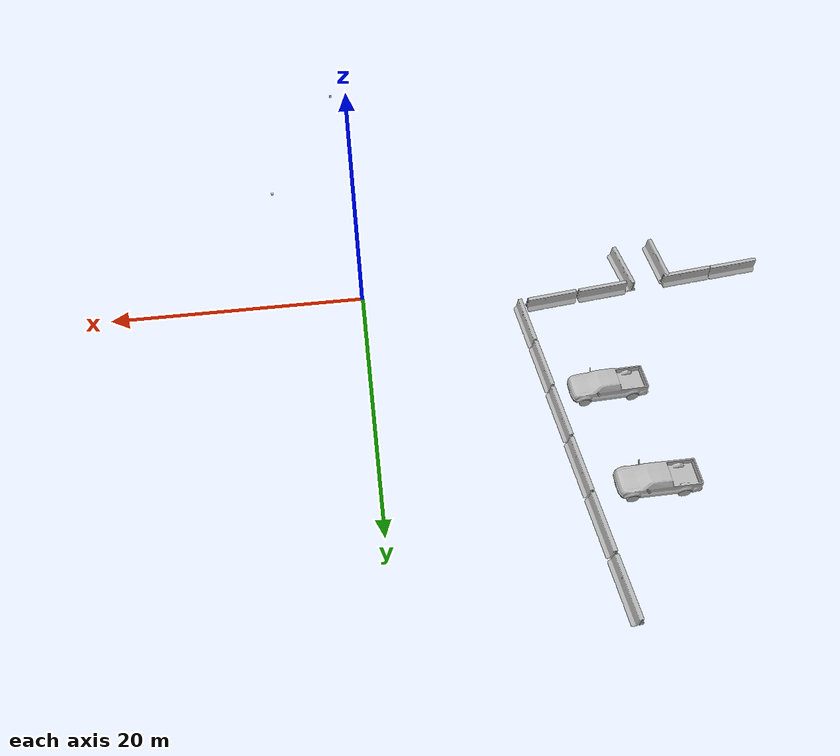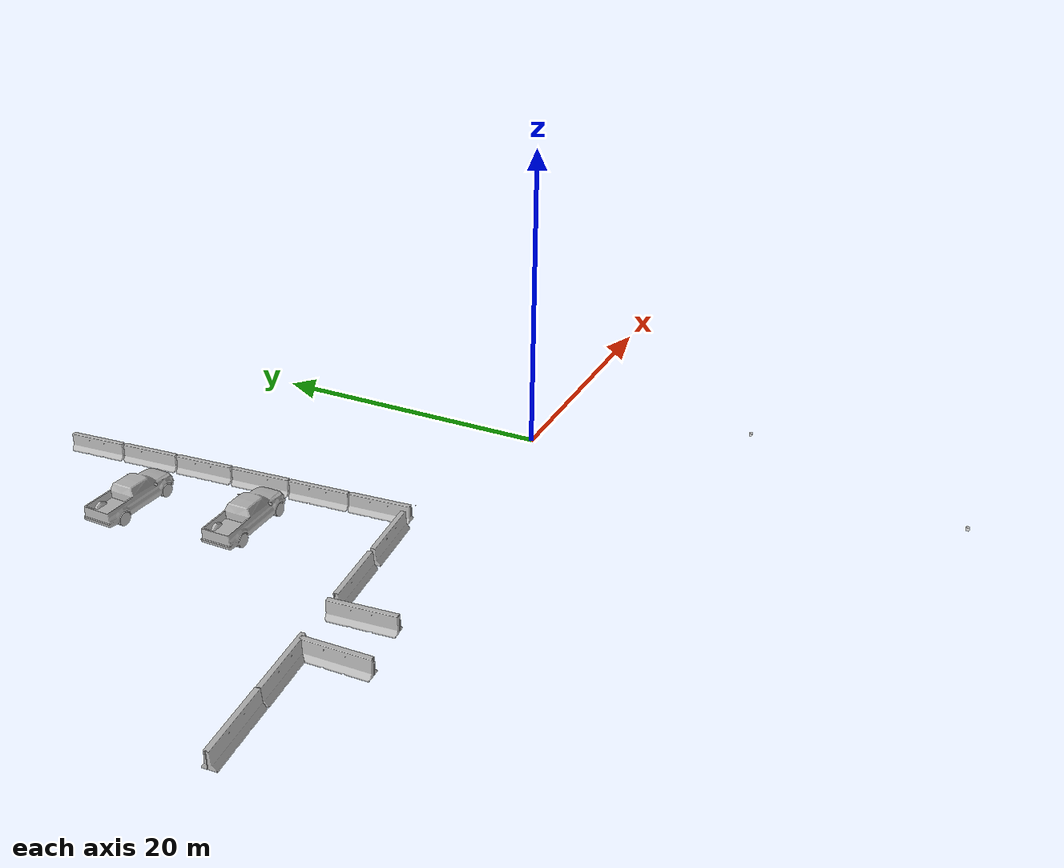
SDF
<sdf version="1.7">
 <world name="default">
  <model name="ground_plane">
   <static>1</static>
   <link name="link">
    <collision name="collision">
     <geometry><plane><normal>0 0 1</normal><size>500 500</size></plane></geometry>
     <surface><friction><ode><mu>100</mu><mu2>50</mu2></ode></friction></surface>
    </collision>
    <velocity_decay><linear>0</linear><angular>0</angular></velocity_decay>
   </link>
  </model>
  <model name="stone_10_2_5_1cm">
   <link name="link">
    <pose>0 0 0.005 0 -0 0</pose>
    <inertial>
     <mass>0.0628</mass>
     <inertia>
      <ixx>3.79417e-06</ixx>
      <ixy>0</ixy>
      <ixz>0</ixz>
      <iyy>5.28567e-05</iyy>
      <iyz>0</iyz>
      <izz>5.56042e-05</izz>
     </inertia>
    </inertial>
    <collision name="collision">
     <geometry><box><size>0.1 0.025 0.01</size></box></geometry>
     <surface>
      <contact>
       <poissons_ratio>0.15</poissons_ratio>
       <elastic_modulus>8e+10</elastic_modulus>
       <ode><kp>100000</kp><kd>100</kd><max_vel>100</max_vel><min_depth>0.001</min_depth></ode>
      </contact>
      <friction>
       <torsional>
        <coefficient>1</coefficient>
        <use_patch_radius>0</use_patch_radius>
        <surface_radius>0.01</surface_radius>
       </torsional>
      </friction>
     </surface>
    </collision>
    <visual name="visual">
     <geometry><box><size>0.1 0.025 0.01</size></box></geometry>
     <material>
      <script><uri>file://media/materials/scripts/gazebo.material</uri><name>Gazebo/Grey</name></script>
     </material>
    </visual>
   </link>
   <pose>-10.7066 3.01548 -0.001001 0 -0 0</pose>
  </model>
  <model name="jersey_barrier">
   <static>1</static>
   <link name="link">
    <visual name="visual">
     <geometry><mesh><uri>model://jersey barrier/meshes/jersey_barrier.dae</uri></mesh></geometry>
    </visual>
    <collision name="upright">
     <pose>0 0 0.5715 0 -0 0</pose>
     <geometry><box><size>4.06542 0.3063 1.143</size></box></geometry>
    </collision>
    <collision name="base">
     <pose>0 0 0.032258 0 -0 0</pose>
     <geometry><box><size>4.06542 0.8107 0.064516</size></box></geometry>
    </collision>
    <collision name="base2">
     <pose>0 0 0.1 0 -0 0</pose>
     <geometry><box><size>4.06542 0.65 0.1</size></box></geometry>
    </collision>
    <collision name="base3">
     <pose>0 0 0.2 0 -0 0</pose>
     <geometry><box><size>4.06542 0.5 0.1</size></box></geometry>
    </collision>
    <collision name="left-angle">
     <pose>0 -0.224 0.2401 0.9 -0 0</pose>
     <geometry><box><size>4.06542 0.5 0.064516</size></box></geometry>
    </collision>
    <collision name="right-angle">
     <pose>0 0.224 0.2401 -0.9 0 0</pose>
     <geometry><box><size>4.06542 0.5 0.064516</size></box></geometry>
    </collision>
   </link>
   <pose>-14.4169 25.1493 0 0 0 -1.47682</pose>
  </model>
  <model name="jersey_barrier_clone">
   <static>1</static>
   <link name="link">
    <visual name="visual">
     <geometry><mesh><uri>model://jersey barrier/meshes/jersey_barrier.dae</uri></mesh></geometry>
    </visual>
    <collision name="upright">
     <pose>0 0 0.5715 0 -0 0</pose>
     <geometry><box><size>4.06542 0.3063 1.143</size></box></geometry>
    </collision>
    <collision name="base">
     <pose>0 0 0.032258 0 -0 0</pose>
     <geometry><box><size>4.06542 0.8107 0.064516</size></box></geometry>
    </collision>
    <collision name="base2">
     <pose>0 0 0.1 0 -0 0</pose>
     <geometry><box><size>4.06542 0.65 0.1</size></box></geometry>
    </collision>
    <collision name="base3">
     <pose>0 0 0.2 0 -0 0</pose>
     <geometry><box><size>4.06542 0.5 0.1</size></box></geometry>
    </collision>
    <collision name="left-angle">
     <pose>0 -0.224 0.2401 0.9 -0 0</pose>
     <geometry><box><size>4.06542 0.5 0.064516</size></box></geometry>
    </collision>
    <collision name="right-angle">
     <pose>0 0.224 0.2401 -0.9 0 0</pose>
     <geometry><box><size>4.06542 0.5 0.064516</size></box></geometry>
    </collision>
   </link>
   <pose>-14.0333 20.9652 0 0 0 -1.47682</pose>
  </model>
  <model name="jersey_barrier_clone_0">
   <static>1</static>
   <link name="link">
    <visual name="visual">
     <geometry><mesh><uri>model://jersey barrier/meshes/jersey_barrier.dae</uri></mesh></geometry>
    </visual>
    <collision name="upright">
     <pose>0 0 0.5715 0 -0 0</pose>
     <geometry><box><size>4.06542 0.3063 1.143</size></box></geometry>
    </collision>
    <collision name="base">
     <pose>0 0 0.032258 0 -0 0</pose>
     <geometry><box><size>4.06542 0.8107 0.064516</size></box></geometry>
    </collision>
    <collision name="base2">
     <pose>0 0 0.1 0 -0 0</pose>
     <geometry><box><size>4.06542 0.65 0.1</size></box></geometry>
    </collision>
    <collision name="base3">
     <pose>0 0 0.2 0 -0 0</pose>
     <geometry><box><size>4.06542 0.5 0.1</size></box></geometry>
    </collision>
    <collision name="left-angle">
     <pose>0 -0.224 0.2401 0.9 -0 0</pose>
     <geometry><box><size>4.06542 0.5 0.064516</size></box></geometry>
    </collision>
    <collision name="right-angle">
     <pose>0 0.224 0.2401 -0.9 0 0</pose>
     <geometry><box><size>4.06542 0.5 0.064516</size></box></geometry>
    </collision>
   </link>
   <pose>-13.649 16.8026 0 0 0 -1.47682</pose>
  </model>
  <model name="jersey_barrier_clone_1">
   <static>1</static>
   <link name="link">
    <visual name="visual">
     <geometry><mesh><uri>model://jersey barrier/meshes/jersey_barrier.dae</uri></mesh></geometry>
    </visual>
    <collision name="upright">
     <pose>0 0 0.5715 0 -0 0</pose>
     <geometry><box><size>4.06542 0.3063 1.143</size></box></geometry>
    </collision>
    <collision name="base">
     <pose>0 0 0.032258 0 -0 0</pose>
     <geometry><box><size>4.06542 0.8107 0.064516</size></box></geometry>
    </collision>
    <collision name="base2">
     <pose>0 0 0.1 0 -0 0</pose>
     <geometry><box><size>4.06542 0.65 0.1</size></box></geometry>
    </collision>
    <collision name="base3">
     <pose>0 0 0.2 0 -0 0</pose>
     <geometry><box><size>4.06542 0.5 0.1</size></box></geometry>
    </collision>
    <collision name="left-angle">
     <pose>0 -0.224 0.2401 0.9 -0 0</pose>
     <geometry><box><size>4.06542 0.5 0.064516</size></box></geometry>
    </collision>
    <collision name="right-angle">
     <pose>0 0.224 0.2401 -0.9 0 0</pose>
     <geometry><box><size>4.06542 0.5 0.064516</size></box></geometry>
    </collision>
   </link>
   <pose>-12.9437 8.46432 0 0 0 -1.47682</pose>
  </model>
  <model name="jersey_barrier_clone_2">
   <static>1</static>
   <link name="link">
    <visual name="visual">
     <geometry><mesh><uri>model://jersey barrier/meshes/jersey_barrier.dae</uri></mesh></geometry>
    </visual>
    <collision name="upright">
     <pose>0 0 0.5715 0 -0 0</pose>
     <geometry><box><size>4.06542 0.3063 1.143</size></box></geometry>
    </collision>
    <collision name="base">
     <pose>0 0 0.032258 0 -0 0</pose>
     <geometry><box><size>4.06542 0.8107 0.064516</size></box></geometry>
    </collision>
    <collision name="base2">
     <pose>0 0 0.1 0 -0 0</pose>
     <geometry><box><size>4.06542 0.65 0.1</size></box></geometry>
    </collision>
    <collision name="base3">
     <pose>0 0 0.2 0 -0 0</pose>
     <geometry><box><size>4.06542 0.5 0.1</size></box></geometry>
    </collision>
    <collision name="left-angle">
     <pose>0 -0.224 0.2401 0.9 -0 0</pose>
     <geometry><box><size>4.06542 0.5 0.064516</size></box></geometry>
    </collision>
    <collision name="right-angle">
     <pose>0 0.224 0.2401 -0.9 0 0</pose>
     <geometry><box><size>4.06542 0.5 0.064516</size></box></geometry>
    </collision>
   </link>
   <pose>-15.0314 2.21816 0 0 -0 0.11035</pose>
  </model>
  <model name="jersey_barrier_clone_2_clone">
   <static>1</static>
   <link name="link">
    <visual name="visual">
     <geometry><mesh><uri>model://jersey barrier/meshes/jersey_barrier.dae</uri></mesh></geometry>
    </visual>
    <collision name="upright">
     <pose>0 0 0.5715 0 -0 0</pose>
     <geometry><box><size>4.06542 0.3063 1.143</size></box></geometry>
    </collision>
    <collision name="base">
     <pose>0 0 0.032258 0 -0 0</pose>
     <geometry><box><size>4.06542 0.8107 0.064516</size></box></geometry>
    </collision>
    <collision name="base2">
     <pose>0 0 0.1 0 -0 0</pose>
     <geometry><box><size>4.06542 0.65 0.1</size></box></geometry>
    </collision>
    <collision name="base3">
     <pose>0 0 0.2 0 -0 0</pose>
     <geometry><box><size>4.06542 0.5 0.1</size></box></geometry>
    </collision>
    <collision name="left-angle">
     <pose>0 -0.224 0.2401 0.9 -0 0</pose>
     <geometry><box><size>4.06542 0.5 0.064516</size></box></geometry>
    </collision>
    <collision name="right-angle">
     <pose>0 0.224 0.2401 -0.9 0 0</pose>
     <geometry><box><size>4.06542 0.5 0.064516</size></box></geometry>
    </collision>
   </link>
   <pose>-19.2855 1.77483 0 0 -0 0.106437</pose>
  </model>
  <model name="jersey_barrier_clone_0_clone_7">
   <static>1</static>
   <link name="link">
    <visual name="visual">
     <geometry><mesh><uri>model://jersey barrier/meshes/jersey_barrier.dae</uri></mesh></geometry>
    </visual>
    <collision name="upright">
     <pose>0 0 0.5715 0 -0 0</pose>
     <geometry><box><size>4.06542 0.3063 1.143</size></box></geometry>
    </collision>
    <collision name="base">
     <pose>0 0 0.032258 0 -0 0</pose>
     <geometry><box><size>4.06542 0.8107 0.064516</size></box></geometry>
    </collision>
    <collision name="base2">
     <pose>0 0 0.1 0 -0 0</pose>
     <geometry><box><size>4.06542 0.65 0.1</size></box></geometry>
    </collision>
    <collision name="base3">
     <pose>0 0 0.2 0 -0 0</pose>
     <geometry><box><size>4.06542 0.5 0.1</size></box></geometry>
    </collision>
    <collision name="left-angle">
     <pose>0 -0.224 0.2401 0.9 -0 0</pose>
     <geometry><box><size>4.06542 0.5 0.064516</size></box></geometry>
    </collision>
    <collision name="right-angle">
     <pose>0 0.224 0.2401 -0.9 0 0</pose>
     <geometry><box><size>4.06542 0.5 0.064516</size></box></geometry>
    </collision>
   </link>
   <pose>-13.294 12.6313 0 0 0 -1.47682</pose>
  </model>
  <model name="jersey_barrier_clone_2_clone_clone">
   <static>1</static>
   <link name="link">
    <visual name="visual">
     <geometry><mesh><uri>model://jersey barrier/meshes/jersey_barrier.dae</uri></mesh></geometry>
    </visual>
    <collision name="upright">
     <pose>0 0 0.5715 0 -0 0</pose>
     <geometry><box><size>4.06542 0.3063 1.143</size></box></geometry>
    </collision>
    <collision name="base">
     <pose>0 0 0.032258 0 -0 0</pose>
     <geometry><box><size>4.06542 0.8107 0.064516</size></box></geometry>
    </collision>
    <collision name="base2">
     <pose>0 0 0.1 0 -0 0</pose>
     <geometry><box><size>4.06542 0.65 0.1</size></box></geometry>
    </collision>
    <collision name="base3">
     <pose>0 0 0.2 0 -0 0</pose>
     <geometry><box><size>4.06542 0.5 0.1</size></box></geometry>
    </collision>
    <collision name="left-angle">
     <pose>0 -0.224 0.2401 0.9 -0 0</pose>
     <geometry><box><size>4.06542 0.5 0.064516</size></box></geometry>
    </collision>
    <collision name="right-angle">
     <pose>0 0.224 0.2401 -0.9 0 0</pose>
     <geometry><box><size>4.06542 0.5 0.064516</size></box></geometry>
    </collision>
   </link>
   <pose>-21.6041 -0.274002 0 0 -0 1.687</pose>
  </model>
  <model name="jersey_barrier_clone_2_clone_clone_clone">
   <static>1</static>
   <link name="link">
    <visual name="visual">
     <geometry><mesh><uri>model://jersey barrier/meshes/jersey_barrier.dae</uri></mesh></geometry>
    </visual>
    <collision name="upright">
     <pose>0 0 0.5715 0 -0 0</pose>
     <geometry><box><size>4.06542 0.3063 1.143</size></box></geometry>
    </collision>
    <collision name="base">
     <pose>0 0 0.032258 0 -0 0</pose>
     <geometry><box><size>4.06542 0.8107 0.064516</size></box></geometry>
    </collision>
    <collision name="base2">
     <pose>0 0 0.1 0 -0 0</pose>
     <geometry><box><size>4.06542 0.65 0.1</size></box></geometry>
    </collision>
    <collision name="base3">
     <pose>0 0 0.2 0 -0 0</pose>
     <geometry><box><size>4.06542 0.5 0.1</size></box></geometry>
    </collision>
    <collision name="left-angle">
     <pose>0 -0.224 0.2401 0.9 -0 0</pose>
     <geometry><box><size>4.06542 0.5 0.064516</size></box></geometry>
    </collision>
    <collision name="right-angle">
     <pose>0 0.224 0.2401 -0.9 0 0</pose>
     <geometry><box><size>4.06542 0.5 0.064516</size></box></geometry>
    </collision>
   </link>
   <pose>-24.7506 -0.795632 0 0 -0 1.63336</pose>
  </model>
  <model name="jersey_barrier_clone_1_clone">
   <static>1</static>
   <link name="link">
    <visual name="visual">
     <geometry><mesh><uri>model://jersey barrier/meshes/jersey_barrier.dae</uri></mesh></geometry>
    </visual>
    <collision name="upright">
     <pose>0 0 0.5715 0 -0 0</pose>
     <geometry><box><size>4.06542 0.3063 1.143</size></box></geometry>
    </collision>
    <collision name="base">
     <pose>0 0 0.032258 0 -0 0</pose>
     <geometry><box><size>4.06542 0.8107 0.064516</size></box></geometry>
    </collision>
    <collision name="base2">
     <pose>0 0 0.1 0 -0 0</pose>
     <geometry><box><size>4.06542 0.65 0.1</size></box></geometry>
    </collision>
    <collision name="base3">
     <pose>0 0 0.2 0 -0 0</pose>
     <geometry><box><size>4.06542 0.5 0.1</size></box></geometry>
    </collision>
    <collision name="left-angle">
     <pose>0 -0.224 0.2401 0.9 -0 0</pose>
     <geometry><box><size>4.06542 0.5 0.064516</size></box></geometry>
    </collision>
    <collision name="right-angle">
     <pose>0 0.224 0.2401 -0.9 0 0</pose>
     <geometry><box><size>4.06542 0.5 0.064516</size></box></geometry>
    </collision>
   </link>
   <pose>-12.561 4.34344 0 0 0 -1.47682</pose>
  </model>
  <model name="jersey_barrier_clone_2_clone_clone_0">
   <static>1</static>
   <link name="link">
    <visual name="visual">
     <geometry><mesh><uri>model://jersey barrier/meshes/jersey_barrier.dae</uri></mesh></geometry>
    </visual>
    <collision name="upright">
     <pose>0 0 0.5715 0 -0 0</pose>
     <geometry><box><size>4.06542 0.3063 1.143</size></box></geometry>
    </collision>
    <collision name="base">
     <pose>0 0 0.032258 0 -0 0</pose>
     <geometry><box><size>4.06542 0.8107 0.064516</size></box></geometry>
    </collision>
    <collision name="base2">
     <pose>0 0 0.1 0 -0 0</pose>
     <geometry><box><size>4.06542 0.65 0.1</size></box></geometry>
    </collision>
    <collision name="base3">
     <pose>0 0 0.2 0 -0 0</pose>
     <geometry><box><size>4.06542 0.5 0.1</size></box></geometry>
    </collision>
    <collision name="left-angle">
     <pose>0 -0.224 0.2401 0.9 -0 0</pose>
     <geometry><box><size>4.06542 0.5 0.064516</size></box></geometry>
    </collision>
    <collision name="right-angle">
     <pose>0 0.224 0.2401 -0.9 0 0</pose>
     <geometry><box><size>4.06542 0.5 0.064516</size></box></geometry>
    </collision>
   </link>
   <pose>-26.5644 1.02917 0 0 -0 0.106437</pose>
  </model>
  <model name="jersey_barrier_clone_2_clone_clone_0_clone">
   <static>1</static>
   <link name="link">
    <visual name="visual">
     <geometry><mesh><uri>model://jersey barrier/meshes/jersey_barrier.dae</uri></mesh></geometry>
    </visual>
    <collision name="upright">
     <pose>0 0 0.5715 0 -0 0</pose>
     <geometry><box><size>4.06542 0.3063 1.143</size></box></geometry>
    </collision>
    <collision name="base">
     <pose>0 0 0.032258 0 -0 0</pose>
     <geometry><box><size>4.06542 0.8107 0.064516</size></box></geometry>
    </collision>
    <collision name="base2">
     <pose>0 0 0.1 0 -0 0</pose>
     <geometry><box><size>4.06542 0.65 0.1</size></box></geometry>
    </collision>
    <collision name="base3">
     <pose>0 0 0.2 0 -0 0</pose>
     <geometry><box><size>4.06542 0.5 0.1</size></box></geometry>
    </collision>
    <collision name="left-angle">
     <pose>0 -0.224 0.2401 0.9 -0 0</pose>
     <geometry><box><size>4.06542 0.5 0.064516</size></box></geometry>
    </collision>
    <collision name="right-angle">
     <pose>0 0.224 0.2401 -0.9 0 0</pose>
     <geometry><box><size>4.06542 0.5 0.064516</size></box></geometry>
    </collision>
   </link>
   <pose>-30.6289 0.616539 0 0 -0 0.106437</pose>
  </model>
  <model name="white_box">
   <link name="link">
    <inertial>
     <mass>1</mass>
     <inertia>
      <ixx>0.166667</ixx>
      <ixy>0</ixy>
      <ixz>0</ixz>
      <iyy>0.166667</iyy>
      <iyz>0</iyz>
      <izz>0.166667</izz>
     </inertia>
    </inertial>
    <visual name="visual">
     <geometry><box><size>0.2 0.2 0.2</size></box></geometry>
     <material>
      <script><name>Gazebo/White</name><uri>file://media/materials/scripts/gazebo.material</uri></script>
      <shader type="pixel"><normal_map>__default__</normal_map></shader>
      <ambient>1 1 1 1</ambient>
      <diffuse>1 1 1 1</diffuse>
      <specular>0 0 0 1</specular>
      <emissive>0.5 0.5 0.5 1</emissive>
     </material>
    </visual>
    <collision name="collision">
     <geometry><box><size>0.2 0.2 0.2</size></box></geometry>
     <surface>
      <friction>
       <ode><mu>1</mu><mu2>1</mu2><fdir1>0 0 0</fdir1><slip1>0</slip1><slip2>0</slip2></ode>
       <torsional>
        <coefficient>1</coefficient>
        <patch_radius>0</patch_radius>
        <surface_radius>0</surface_radius>
        <use_patch_radius>1</use_patch_radius>
        <ode><slip>0</slip></ode>
       </torsional>
      </friction>
      <bounce><restitution_coefficient>0</restitution_coefficient><threshold>1e+06</threshold></bounce>
      <contact>
       <collide_without_contact>0</collide_without_contact>
       <collide_without_contact_bitmask>1</collide_without_contact_bitmask>
       <collide_bitmask>1</collide_bitmask>
       <ode>
        <soft_cfm>0</soft_cfm>
        <soft_erp>0.2</soft_erp>
        <kp>1e+13</kp>
        <kd>1</kd>
        <max_vel>0.01</max_vel>
        <min_depth>0</min_depth>
       </ode>
       <bullet>
        <split_impulse>1</split_impulse>
        <split_impulse_penetration_threshold>-0.01</split_impulse_penetration_threshold>
        <soft_cfm>0</soft_cfm>
        <soft_erp>0.2</soft_erp>
        <kp>1e+13</kp>
        <kd>1</kd>
       </bullet>
      </contact>
     </surface>
    </collision>
   </link>
   <static>0</static>
   <pose>1.44272 -27.4257 0.1 -2e-06 2e-06 -6e-06</pose>
  </model>
  <model name="white_box_clone">
   <link name="link">
    <inertial>
     <mass>1</mass>
     <inertia>
      <ixx>0.166667</ixx>
      <ixy>0</ixy>
      <ixz>0</ixz>
      <iyy>0.166667</iyy>
      <iyz>0</iyz>
      <izz>0.166667</izz>
     </inertia>
    </inertial>
    <visual name="visual">
     <geometry><box><size>0.2 0.2 0.2</size></box></geometry>
     <material>
      <script><name>Gazebo/White</name><uri>file://media/materials/scripts/gazebo.material</uri></script>
      <shader type="pixel"><normal_map>__default__</normal_map></shader>
      <ambient>1 1 1 1</ambient>
      <diffuse>1 1 1 1</diffuse>
      <specular>0 0 0 1</specular>
      <emissive>0.5 0.5 0.5 1</emissive>
     </material>
    </visual>
    <collision name="collision">
     <geometry><box><size>0.2 0.2 0.2</size></box></geometry>
     <surface>
      <friction>
       <ode><mu>1</mu><mu2>1</mu2><fdir1>0 0 0</fdir1><slip1>0</slip1><slip2>0</slip2></ode>
       <torsional>
        <coefficient>1</coefficient>
        <patch_radius>0</patch_radius>
        <surface_radius>0</surface_radius>
        <use_patch_radius>1</use_patch_radius>
        <ode><slip>0</slip></ode>
       </torsional>
      </friction>
      <bounce><restitution_coefficient>0</restitution_coefficient><threshold>1e+06</threshold></bounce>
      <contact>
       <collide_without_contact>0</collide_without_contact>
       <collide_without_contact_bitmask>1</collide_without_contact_bitmask>
       <collide_bitmask>1</collide_bitmask>
       <ode>
        <soft_cfm>0</soft_cfm>
        <soft_erp>0.2</soft_erp>
        <kp>1e+13</kp>
        <kd>1</kd>
        <max_vel>0.01</max_vel>
        <min_depth>0</min_depth>
       </ode>
       <bullet>
        <split_impulse>1</split_impulse>
        <split_impulse_penetration_threshold>-0.01</split_impulse_penetration_threshold>
        <soft_cfm>0</soft_cfm>
        <soft_erp>0.2</soft_erp>
        <kp>1e+13</kp>
        <kd>1</kd>
       </bullet>
      </contact>
     </surface>
    </collision>
   </link>
   <static>0</static>
   <pose>7.35703 -13.2642 0.099993 7e-06 2e-06 -7e-06</pose>
  </model>
  <model name="MilitaryPickup_0">
   <link name="link">
    <visual name="visual">
     <pose>0 0 0 0 0 -1.5708</pose>
     <geometry><mesh><uri>model://MilitaryPickup/meshes/militarypickup.dae</uri></mesh></geometry>
     <material><shader type="pixel"/></material>
    </visual>
    <collision name="collision">
     <pose>0 0 0 0 0 -1.5708</pose>
     <geometry>
      <mesh><uri>model://MilitaryPickup/meshes/militarypickup.dae</uri><scale>1 1 1</scale></mesh>
     </geometry>
     <surface>
      <friction>
       <ode><mu>1</mu><mu2>1</mu2><fdir1>0 0 0</fdir1><slip1>0</slip1><slip2>0</slip2></ode>
       <torsional>
        <coefficient>1</coefficient>
        <patch_radius>0</patch_radius>
        <surface_radius>0</surface_radius>
        <use_patch_radius>1</use_patch_radius>
        <ode><slip>0</slip></ode>
       </torsional>
      </friction>
      <bounce><restitution_coefficient>0</restitution_coefficient><threshold>1e+06</threshold></bounce>
      <contact>
       <collide_without_contact>0</collide_without_contact>
       <collide_without_contact_bitmask>1</collide_without_contact_bitmask>
       <collide_bitmask>1</collide_bitmask>
       <ode>
        <soft_cfm>0</soft_cfm>
        <soft_erp>0.2</soft_erp>
        <kp>1e+13</kp>
        <kd>1</kd>
        <max_vel>0.01</max_vel>
        <min_depth>0</min_depth>
       </ode>
       <bullet>
        <split_impulse>1</split_impulse>
        <split_impulse_penetration_threshold>-0.01</split_impulse_penetration_threshold>
        <soft_cfm>0</soft_cfm>
        <soft_erp>0.2</soft_erp>
        <kp>1e+13</kp>
        <kd>1</kd>
       </bullet>
      </contact>
     </surface>
    </collision>
   </link>
   <static>1</static>
   <pose>-18.342 18.3832 0 0 -0 0</pose>
  </model>
  <model name="MilitaryPickup_0_clone">
   <link name="link">
    <visual name="visual">
     <pose>0 0 0 0 0 -1.5708</pose>
     <geometry><mesh><uri>model://MilitaryPickup/meshes/militarypickup.dae</uri></mesh></geometry>
     <material><shader type="pixel"/></material>
    </visual>
    <collision name="collision">
     <pose>0 0 0 0 0 -1.5708</pose>
     <geometry>
      <mesh><uri>model://MilitaryPickup/meshes/militarypickup.dae</uri><scale>1 1 1</scale></mesh>
     </geometry>
     <surface>
      <friction>
       <ode><mu>1</mu><mu2>1</mu2><fdir1>0 0 0</fdir1><slip1>0</slip1><slip2>0</slip2></ode>
       <torsional>
        <coefficient>1</coefficient>
        <patch_radius>0</patch_radius>
        <surface_radius>0</surface_radius>
        <use_patch_radius>1</use_patch_radius>
        <ode><slip>0</slip></ode>
       </torsional>
      </friction>
      <bounce><restitution_coefficient>0</restitution_coefficient><threshold>1e+06</threshold></bounce>
      <contact>
       <collide_without_contact>0</collide_without_contact>
       <collide_without_contact_bitmask>1</collide_without_contact_bitmask>
       <collide_bitmask>1</collide_bitmask>
       <ode>
        <soft_cfm>0</soft_cfm>
        <soft_erp>0.2</soft_erp>
        <kp>1e+13</kp>
        <kd>1</kd>
        <max_vel>0.01</max_vel>
        <min_depth>0</min_depth>
       </ode>
       <bullet>
        <split_impulse>1</split_impulse>
        <split_impulse_penetration_threshold>-0.01</split_impulse_penetration_threshold>
        <soft_cfm>0</soft_cfm>
        <soft_erp>0.2</soft_erp>
        <kp>1e+13</kp>
        <kd>1</kd>
       </bullet>
      </contact>
     </surface>
    </collision>
   </link>
   <static>1</static>
   <pose>-17.0441 10.7442 0 0 -0 0.031339</pose>
  </model>
 </world>
</sdf>
